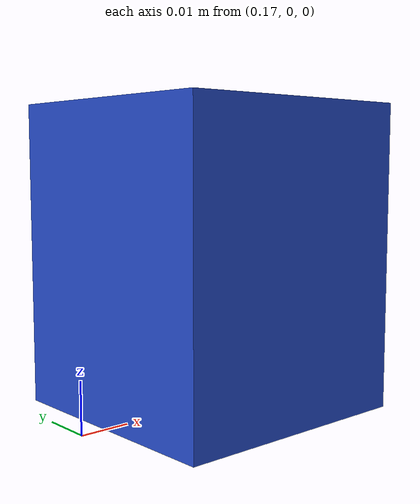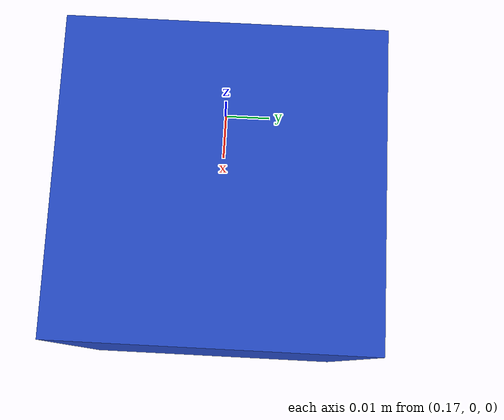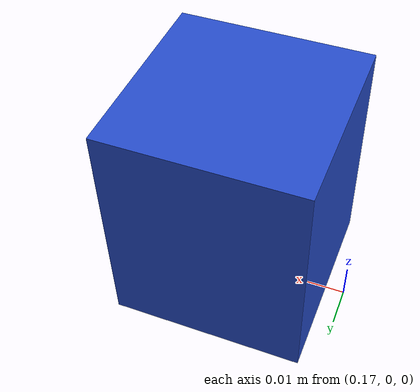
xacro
<?xml version="1.0"?>
<robot name="box" xmlns:xacro="http://wiki.ros.org/xacro">

<xacro:arg name="box_size_x" default="0.05" />
<xacro:arg name="box_size_y" default="0.05" />
<xacro:arg name="box_size_z" default="0.06" />
<xacro:arg name="box_offset_x" default="0.2" />
<xacro:arg name="box_offset_y" default="0.0" />
<xacro:arg name="box_offset_z" default="0.03" />

<link name="base_link">
  <collision>
    <origin xyz="$(arg box_offset_x) $(arg box_offset_y) $(arg box_offset_z)" rpy="0 0 0"/>
    <geometry>
      <box size="$(arg box_size_x) $(arg box_size_y) $(arg box_size_z)" />
    </geometry>
    <surface>
      <friction>
        <ode>
          <mu>100.0</mu>
          <mu2>100.0</mu2>
        </ode>
      </friction>
      <contact>
        <ode/>
      </contact>
    </surface>
  </collision>

  <visual>
    <origin xyz="$(arg box_offset_x) $(arg box_offset_y) $(arg box_offset_z)" rpy="0 0 0"/>
    <geometry>
      <box size="$(arg box_size_x) $(arg box_size_y) $(arg box_size_z)" />
    </geometry>
  </visual>

  <inertial>
    <origin xyz="$(arg box_offset_x) $(arg box_offset_y) $(arg box_offset_z)" rpy="0 0 0" />
    <mass value="0.05" />
    <inertia
      ixx="0.05" ixy="0.0"  ixz="0.0"
      iyy="0.05" iyz="0.0"
      izz="0.05" />
  </inertial>
  </link>

<gazebo reference="base_link">
  <material>Gazebo/Blue</material>
    <mu1>10</mu1>
    <mu2>10</mu2>
</gazebo>

</robot>
